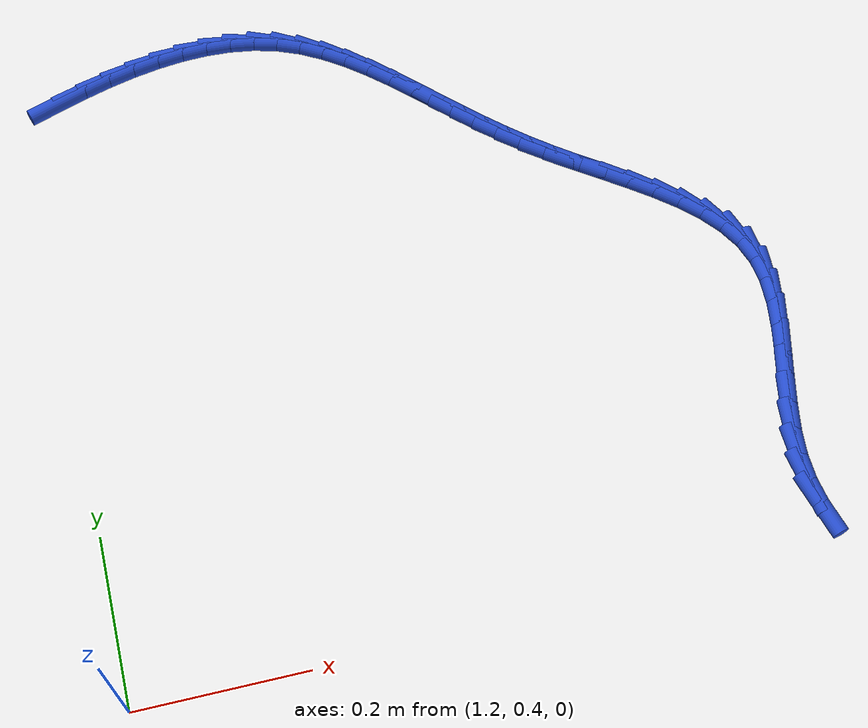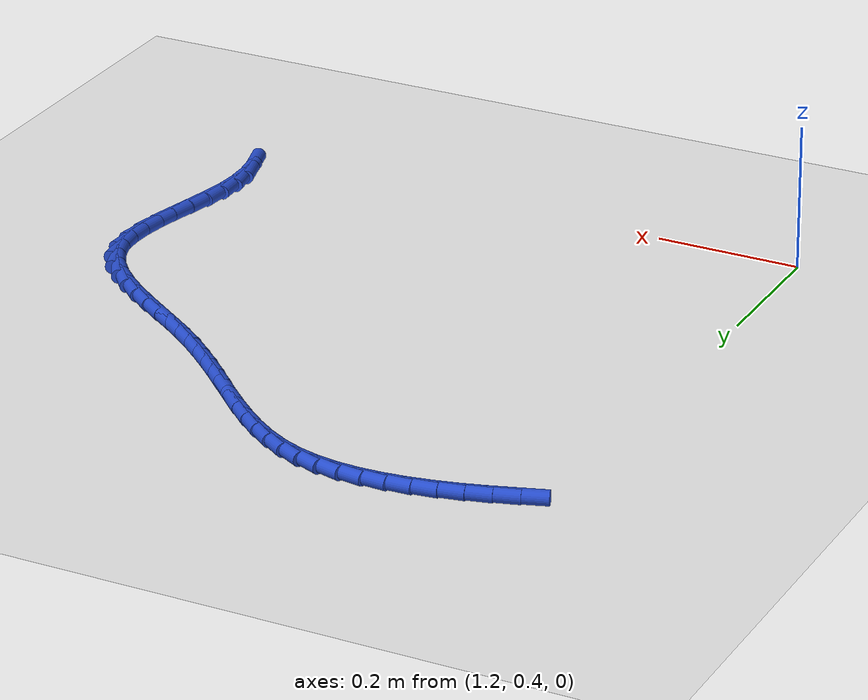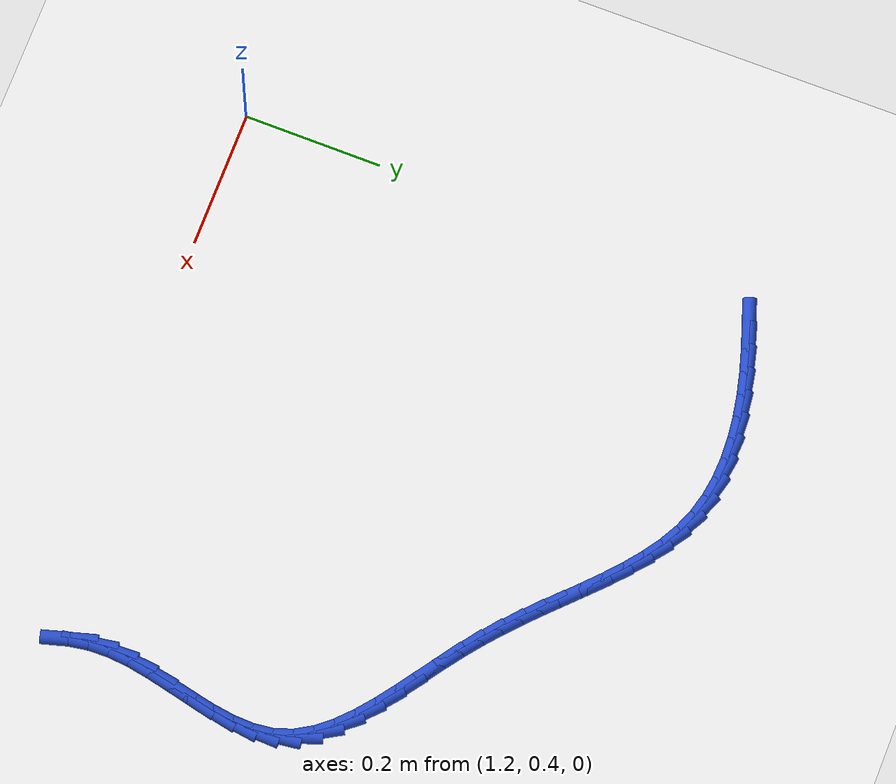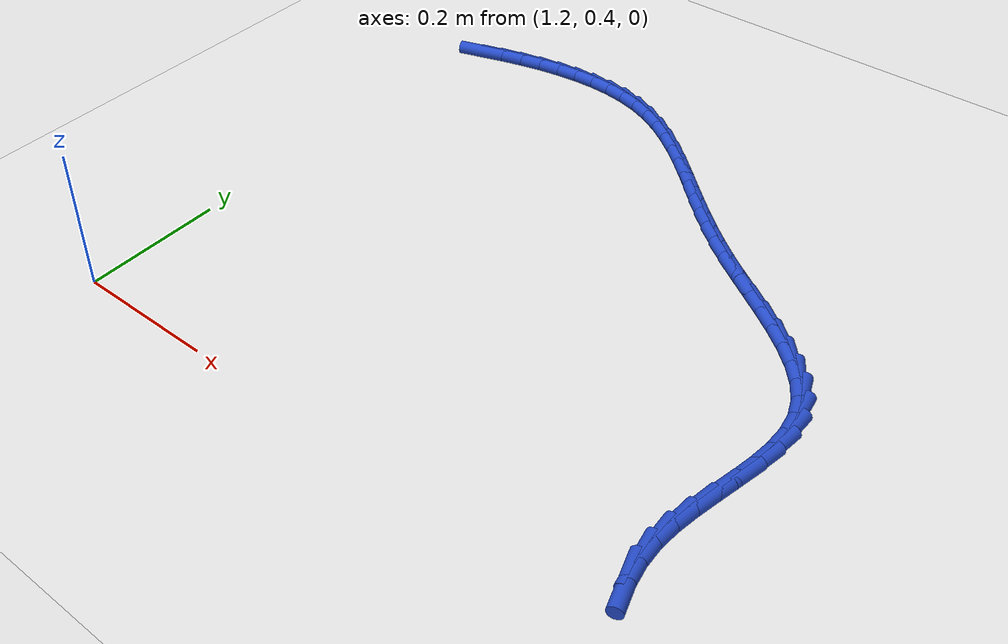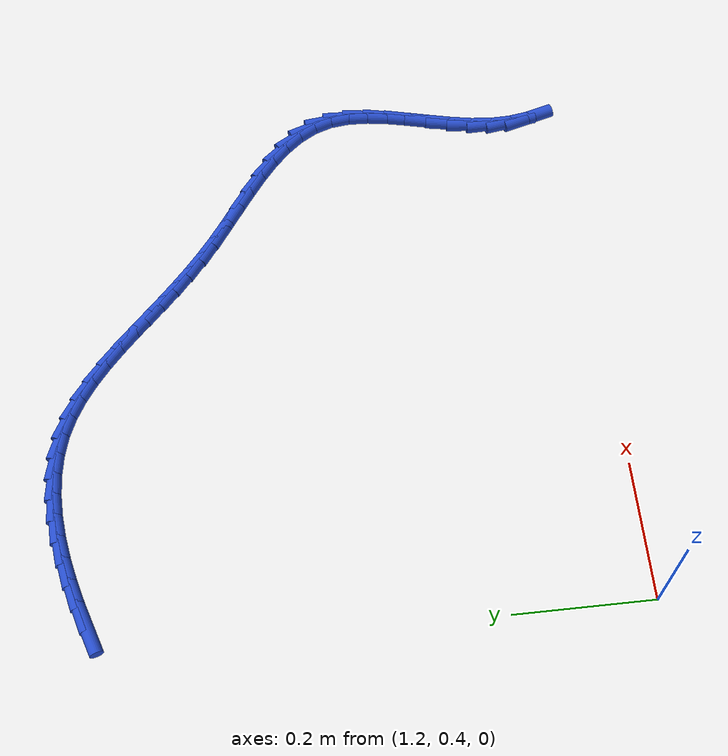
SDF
<sdf version="1.6">
 <world name="default">
  <model name="ground_plane">
   <static>1</static>
   <link name="link">
    <collision name="collision">
     <geometry><plane><normal>0 0 1</normal><size>100 100</size></plane></geometry>
     <surface><friction><ode><mu>100</mu><mu2>50</mu2></ode></friction></surface>
    </collision>
    <visual name="visual">
     <cast_shadows>0</cast_shadows>
     <geometry><plane><normal>0 0 1</normal><size>100 100</size></plane></geometry>
     <material>
      <script><uri>file://media/materials/scripts/gazebo.material</uri><name>Gazebo/WhiteGlow</name></script>
     </material>
    </visual>
   </link>
  </model>
  <model name="line">
   <link name="link_59">
    <pose>1.2396946974499399 1.1645942711903865 0.01 0 1.57 0.3216742407927594</pose>
    <collision name="collision">
     <geometry><cylinder><radius>0.01</radius><length>0.08</length></cylinder></geometry>
    </collision>
    <visual name="visual">
     <material>
      <script><name>Gazebo/Blue</name><uri>file://media/materials/scripts/gazebo.material</uri></script>
     </material>
     <geometry><cylinder><radius>0.01</radius><length>0.08</length></cylinder></geometry>
    </visual>
   </link>
   <link name="link_60">
    <pose>1.2717606933681214 1.1752802175970374 0.01 0 1.57 0.28263354644725275</pose>
    <collision name="collision">
     <geometry><cylinder><radius>0.01</radius><length>0.08</length></cylinder></geometry>
    </collision>
    <visual name="visual">
     <material>
      <script><name>Gazebo/Blue</name><uri>file://media/materials/scripts/gazebo.material</uri></script>
     </material>
     <geometry><cylinder><radius>0.01</radius><length>0.08</length></cylinder></geometry>
    </visual>
   </link>
   <link name="link_61">
    <pose>1.304036291493478 1.1846533030756763 0.01 0 1.57 0.23611502922891736</pose>
    <collision name="collision">
     <geometry><cylinder><radius>0.01</radius><length>0.08</length></cylinder></geometry>
    </collision>
    <visual name="visual">
     <material>
      <script><name>Gazebo/Blue</name><uri>file://media/materials/scripts/gazebo.material</uri></script>
     </material>
     <geometry><cylinder><radius>0.01</radius><length>0.08</length></cylinder></geometry>
    </visual>
   </link>
   <link name="link_62">
    <pose>1.3363530406697008 1.192428808774435 0.01 0 1.57 0.181073547739236</pose>
    <collision name="collision">
     <geometry><cylinder><radius>0.01</radius><length>0.08</length></cylinder></geometry>
    </collision>
    <visual name="visual">
     <material>
      <script><name>Gazebo/Blue</name><uri>file://media/materials/scripts/gazebo.material</uri></script>
     </material>
     <geometry><cylinder><radius>0.01</radius><length>0.08</length></cylinder></geometry>
    </visual>
   </link>
   <link name="link_63">
    <pose>1.3685424897404819 1.1983220158414454 0.01 0 1.57 0.11630427548157742</pose>
    <collision name="collision">
     <geometry><cylinder><radius>0.01</radius><length>0.08</length></cylinder></geometry>
    </collision>
    <visual name="visual">
     <material>
      <script><name>Gazebo/Blue</name><uri>file://media/materials/scripts/gazebo.material</uri></script>
     </material>
     <geometry><cylinder><radius>0.01</radius><length>0.08</length></cylinder></geometry>
    </visual>
   </link>
   <link name="link_64">
    <pose>1.400436187549511 1.2020482054248378 0.01 0 1.57 0.04052739013193571</pose>
    <collision name="collision">
     <geometry><cylinder><radius>0.01</radius><length>0.08</length></cylinder></geometry>
    </collision>
    <visual name="visual">
     <material>
      <script><name>Gazebo/Blue</name><uri>file://media/materials/scripts/gazebo.material</uri></script>
     </material>
     <geometry><cylinder><radius>0.01</radius><length>0.08</length></cylinder></geometry>
    </visual>
   </link>
   <link name="link_65">
    <pose>1.4318656829404792 1.2033226586727446 0.01 0 1.57 -0.04743684946748167</pose>
    <collision name="collision">
     <geometry><cylinder><radius>0.01</radius><length>0.08</length></cylinder></geometry>
    </collision>
    <visual name="visual">
     <material>
      <script><name>Gazebo/Blue</name><uri>file://media/materials/scripts/gazebo.material</uri></script>
     </material>
     <geometry><cylinder><radius>0.01</radius><length>0.08</length></cylinder></geometry>
    </visual>
   </link>
   <link name="link_66">
    <pose>1.4626625247570788 1.2018606567332966 0.01 0 1.57 -0.14836221609609038</pose>
    <collision name="collision">
     <geometry><cylinder><radius>0.01</radius><length>0.08</length></cylinder></geometry>
    </collision>
    <visual name="visual">
     <material>
      <script><name>Gazebo/Blue</name><uri>file://media/materials/scripts/gazebo.material</uri></script>
     </material>
     <geometry><cylinder><radius>0.01</radius><length>0.08</length></cylinder></geometry>
    </visual>
   </link>
   <link name="link_67">
    <pose>1.492658261843 1.1973774807546256 0.01 0 1.57 -0.26216987482418747</pose>
    <collision name="collision">
     <geometry><cylinder><radius>0.01</radius><length>0.08</length></cylinder></geometry>
    </collision>
    <visual name="visual">
     <material>
      <script><name>Gazebo/Blue</name><uri>file://media/materials/scripts/gazebo.material</uri></script>
     </material>
     <geometry><cylinder><radius>0.01</radius><length>0.08</length></cylinder></geometry>
    </visual>
   </link>
   <link name="link_68">
    <pose>1.5216844430419334 1.1895884118848623 0.01 0 1.57 -0.3866303557922626</pose>
    <collision name="collision">
     <geometry><cylinder><radius>0.01</radius><length>0.08</length></cylinder></geometry>
    </collision>
    <visual name="visual">
     <material>
      <script><name>Gazebo/Blue</name><uri>file://media/materials/scripts/gazebo.material</uri></script>
     </material>
     <geometry><cylinder><radius>0.01</radius><length>0.08</length></cylinder></geometry>
    </visual>
   </link>
   <link name="link_69">
    <pose>1.5495805301013221 1.1782313192981213 0.01 0 1.57 -0.5034444426608695</pose>
    <collision name="collision">
     <geometry><cylinder><radius>0.01</radius><length>0.08</length></cylinder></geometry>
    </collision>
    <visual name="visual">
     <material>
      <script><name>Gazebo/Blue</name><uri>file://media/materials/scripts/gazebo.material</uri></script>
     </material>
     <geometry><cylinder><radius>0.01</radius><length>0.08</length></cylinder></geometry>
    </visual>
   </link>
   <link name="link_70">
    <pose>1.5763426215449061 1.1634912045594055 0.01 0 1.57 -0.597327470512749</pose>
    <collision name="collision">
     <geometry><cylinder><radius>0.01</radius><length>0.08</length></cylinder></geometry>
    </collision>
    <visual name="visual">
     <material>
      <script><name>Gazebo/Blue</name><uri>file://media/materials/scripts/gazebo.material</uri></script>
     </material>
     <geometry><cylinder><radius>0.01</radius><length>0.08</length></cylinder></geometry>
    </visual>
   </link>
   <link name="link_71">
    <pose>1.6021105385882406 1.1459633373223133 0.01 0 1.57 -0.6690885610182845</pose>
    <collision name="collision">
     <geometry><cylinder><radius>0.01</radius><length>0.08</length></cylinder></geometry>
    </collision>
    <visual name="visual">
     <material>
      <script><name>Gazebo/Blue</name><uri>file://media/materials/scripts/gazebo.material</uri></script>
     </material>
     <geometry><cylinder><radius>0.01</radius><length>0.08</length></cylinder></geometry>
    </visual>
   </link>
   <link name="link_72">
    <pose>1.6270294265378813 1.126258185290314 0.01 0 1.57 -0.7207876072355663</pose>
    <collision name="collision">
     <geometry><cylinder><radius>0.01</radius><length>0.08</length></cylinder></geometry>
    </collision>
    <visual name="visual">
     <material>
      <script><name>Gazebo/Blue</name><uri>file://media/materials/scripts/gazebo.material</uri></script>
     </material>
     <geometry><cylinder><radius>0.01</radius><length>0.08</length></cylinder></geometry>
    </visual>
   </link>
   <link name="link_73">
    <pose>1.6512444307003824 1.104986216166877 0.01 0 1.57 -0.7542877919329495</pose>
    <collision name="collision">
     <geometry><cylinder><radius>0.01</radius><length>0.08</length></cylinder></geometry>
    </collision>
    <visual name="visual">
     <material>
      <script><name>Gazebo/Blue</name><uri>file://media/materials/scripts/gazebo.material</uri></script>
     </material>
     <geometry><cylinder><radius>0.01</radius><length>0.08</length></cylinder></geometry>
    </visual>
   </link>
   <link name="link_74">
    <pose>1.6749006963823 1.0827578976554728 0.01 0 1.57 -0.770809108189896</pose>
    <collision name="collision">
     <geometry><cylinder><radius>0.01</radius><length>0.08</length></cylinder></geometry>
    </collision>
    <visual name="visual">
     <material>
      <script><name>Gazebo/Blue</name><uri>file://media/materials/scripts/gazebo.material</uri></script>
     </material>
     <geometry><cylinder><radius>0.01</radius><length>0.08</length></cylinder></geometry>
    </visual>
   </link>
   <link name="link_75">
    <pose>1.6981433688901884 1.0601836974595713 0.01 0 1.57 -0.7707226683922299</pose>
    <collision name="collision">
     <geometry><cylinder><radius>0.01</radius><length>0.08</length></cylinder></geometry>
    </collision>
    <visual name="visual">
     <material>
      <script><name>Gazebo/Blue</name><uri>file://media/materials/scripts/gazebo.material</uri></script>
     </material>
     <geometry><cylinder><radius>0.01</radius><length>0.08</length></cylinder></geometry>
    </visual>
   </link>
   <link name="link_76">
    <pose>1.7211175935306027 1.0378740832826423 0.01 0 1.57 -0.754811968397314</pose>
    <collision name="collision">
     <geometry><cylinder><radius>0.01</radius><length>0.08</length></cylinder></geometry>
    </collision>
    <visual name="visual">
     <material>
      <script><name>Gazebo/Blue</name><uri>file://media/materials/scripts/gazebo.material</uri></script>
     </material>
     <geometry><cylinder><radius>0.01</radius><length>0.08</length></cylinder></geometry>
    </visual>
   </link>
   <link name="link_77">
    <pose>1.7440060417106256 1.0163446334083515 0.01 0 1.57 -0.7297961062997002</pose>
    <collision name="collision">
     <geometry><cylinder><radius>0.01</radius><length>0.08</length></cylinder></geometry>
    </collision>
    <visual name="visual">
     <material>
      <script><name>Gazebo/Blue</name><uri>file://media/materials/scripts/gazebo.material</uri></script>
     </material>
     <geometry><cylinder><radius>0.01</radius><length>0.08</length></cylinder></geometry>
    </visual>
   </link>
   <link name="link_78">
    <pose>1.767192012695819 0.9956036135880233 0.01 0 1.57 -0.6988795385347634</pose>
    <collision name="collision">
     <geometry><cylinder><radius>0.01</radius><length>0.08</length></cylinder></geometry>
    </collision>
    <visual name="visual">
     <material>
      <script><name>Gazebo/Blue</name><uri>file://media/materials/scripts/gazebo.material</uri></script>
     </material>
     <geometry><cylinder><radius>0.01</radius><length>0.08</length></cylinder></geometry>
    </visual>
   </link>
   <link name="link_79">
    <pose>1.7911255777072876 0.9754904483656187 0.01 0 1.57 -0.6635041681701959</pose>
    <collision name="collision">
     <geometry><cylinder><radius>0.01</radius><length>0.08</length></cylinder></geometry>
    </collision>
    <visual name="visual">
     <material>
      <script><name>Gazebo/Blue</name><uri>file://media/materials/scripts/gazebo.material</uri></script>
     </material>
     <geometry><cylinder><radius>0.01</radius><length>0.08</length></cylinder></geometry>
    </visual>
   </link>
   <link name="link_80">
    <pose>1.8162568532088912 0.9558444478831588 0.01 0 1.57 -0.6268028935473543</pose>
    <collision name="collision">
     <geometry><cylinder><radius>0.01</radius><length>0.08</length></cylinder></geometry>
    </collision>
    <visual name="visual">
     <material>
      <script><name>Gazebo/Blue</name><uri>file://media/materials/scripts/gazebo.material</uri></script>
     </material>
     <geometry><cylinder><radius>0.01</radius><length>0.08</length></cylinder></geometry>
    </visual>
   </link>
   <link name="link_81">
    <pose>1.8429688313902335 0.9364988483295156 0.01 0 1.57 -0.6052456718027063</pose>
    <collision name="collision">
     <geometry><cylinder><radius>0.01</radius><length>0.08</length></cylinder></geometry>
    </collision>
    <visual name="visual">
     <material>
      <script><name>Gazebo/Blue</name><uri>file://media/materials/scripts/gazebo.material</uri></script>
     </material>
     <geometry><cylinder><radius>0.01</radius><length>0.08</length></cylinder></geometry>
    </visual>
   </link>
   <link name="link_82">
    <pose>1.8708421229488743 0.9172142798558062 0.01 0 1.57 -0.6071303076810874</pose>
    <collision name="collision">
     <geometry><cylinder><radius>0.01</radius><length>0.08</length></cylinder></geometry>
    </collision>
    <visual name="visual">
     <material>
      <script><name>Gazebo/Blue</name><uri>file://media/materials/scripts/gazebo.material</uri></script>
     </material>
     <geometry><cylinder><radius>0.01</radius><length>0.08</length></cylinder></geometry>
    </visual>
   </link>
   <link name="link_83">
    <pose>1.898929001017878 0.8977035643105689 0.01 0 1.57 -0.6321070335067361</pose>
    <collision name="collision">
     <geometry><cylinder><radius>0.01</radius><length>0.08</length></cylinder></geometry>
    </collision>
    <visual name="visual">
     <material>
      <script><name>Gazebo/Blue</name><uri>file://media/materials/scripts/gazebo.material</uri></script>
     </material>
     <geometry><cylinder><radius>0.01</radius><length>0.08</length></cylinder></geometry>
    </visual>
   </link>
   <link name="link_84">
    <pose>1.9262724409755136 0.8776786822054681 0.01 0 1.57 -0.6821321111519187</pose>
    <collision name="collision">
     <geometry><cylinder><radius>0.01</radius><length>0.08</length></cylinder></geometry>
    </collision>
    <visual name="visual">
     <material>
      <script><name>Gazebo/Blue</name><uri>file://media/materials/scripts/gazebo.material</uri></script>
     </material>
     <geometry><cylinder><radius>0.01</radius><length>0.08</length></cylinder></geometry>
    </visual>
   </link>
   <link name="link_85">
    <pose>1.9519154182000498 0.8568516140521687 0.01 0 1.57 -0.7616131077045573</pose>
    <collision name="collision">
     <geometry><cylinder><radius>0.01</radius><length>0.08</length></cylinder></geometry>
    </collision>
    <visual name="visual">
     <material>
      <script><name>Gazebo/Blue</name><uri>file://media/materials/scripts/gazebo.material</uri></script>
     </material>
     <geometry><cylinder><radius>0.01</radius><length>0.08</length></cylinder></geometry>
    </visual>
   </link>
   <link name="link_86">
    <pose>1.9749009080697542 0.834934340362336 0.01 0 1.57 -0.8771214338222975</pose>
    <collision name="collision">
     <geometry><cylinder><radius>0.01</radius><length>0.08</length></cylinder></geometry>
    </collision>
    <visual name="visual">
     <material>
      <script><name>Gazebo/Blue</name><uri>file://media/materials/scripts/gazebo.material</uri></script>
     </material>
     <geometry><cylinder><radius>0.01</radius><length>0.08</length></cylinder></geometry>
    </visual>
   </link>
   <link name="link_87">
    <pose>1.9942718859628958 0.8116388416476346 0.01 0 1.57 -1.0356249241007198</pose>
    <collision name="collision">
     <geometry><cylinder><radius>0.01</radius><length>0.08</length></cylinder></geometry>
    </collision>
    <visual name="visual">
     <material>
      <script><name>Gazebo/Blue</name><uri>file://media/materials/scripts/gazebo.material</uri></script>
     </material>
     <geometry><cylinder><radius>0.01</radius><length>0.08</length></cylinder></geometry>
    </visual>
   </link>
   <link name="link_88">
    <pose>2.0090713272577436 0.786677098419729 0.01 0 1.57 -1.238749753912228</pose>
    <collision name="collision">
     <geometry><cylinder><radius>0.01</radius><length>0.08</length></cylinder></geometry>
    </collision>
    <visual name="visual">
     <material>
      <script><name>Gazebo/Blue</name><uri>file://media/materials/scripts/gazebo.material</uri></script>
     </material>
     <geometry><cylinder><radius>0.01</radius><length>0.08</length></cylinder></geometry>
    </visual>
   </link>
   <link name="link_89">
    <pose>2.018351284087968 0.7597640975515839 0.01 0 1.57 -1.4481008485037783</pose>
    <collision name="collision">
     <geometry><cylinder><radius>0.01</radius><length>0.08</length></cylinder></geometry>
    </collision>
    <visual name="visual">
     <material>
      <script><name>Gazebo/Blue</name><uri>file://media/materials/scripts/gazebo.material</uri></script>
     </material>
     <geometry><cylinder><radius>0.01</radius><length>0.08</length></cylinder></geometry>
    </visual>
   </link>
   <link name="link_90">
    <pose>2.0219151365704913 0.7308636773253334 0.01 0 1.57 1.5364827264730359</pose>
    <collision name="collision">
     <geometry><cylinder><radius>0.01</radius><length>0.08</length></cylinder></geometry>
    </collision>
    <visual name="visual">
     <material>
      <script><name>Gazebo/Blue</name><uri>file://media/materials/scripts/gazebo.material</uri></script>
     </material>
     <geometry><cylinder><radius>0.01</radius><length>0.08</length></cylinder></geometry>
    </visual>
   </link>
   <link name="link_91">
    <pose>2.020868411047859 0.7003709669245711 0.01 0 1.57 1.4319663552815216</pose>
    <collision name="collision">
     <geometry><cylinder><radius>0.01</radius><length>0.08</length></cylinder></geometry>
    </collision>
    <visual name="visual">
     <material>
      <script><name>Gazebo/Blue</name><uri>file://media/materials/scripts/gazebo.material</uri></script>
     </material>
     <geometry><cylinder><radius>0.01</radius><length>0.08</length></cylinder></geometry>
    </visual>
   </link>
   <link name="link_92">
    <pose>2.0164464294721185 0.6687240858394529 0.01 0 1.57 1.3707481114223827</pose>
    <collision name="collision">
     <geometry><cylinder><radius>0.01</radius><length>0.08</length></cylinder></geometry>
    </collision>
    <visual name="visual">
     <material>
      <script><name>Gazebo/Blue</name><uri>file://media/materials/scripts/gazebo.material</uri></script>
     </material>
     <geometry><cylinder><radius>0.01</radius><length>0.08</length></cylinder></geometry>
    </visual>
   </link>
   <link name="link_93">
    <pose>2.0098845137953196 0.6363611535601353 0.01 0 1.57 1.3459174921613422</pose>
    <collision name="collision">
     <geometry><cylinder><radius>0.01</radius><length>0.08</length></cylinder></geometry>
    </collision>
    <visual name="visual">
     <material>
      <script><name>Gazebo/Blue</name><uri>file://media/materials/scripts/gazebo.material</uri></script>
     </material>
     <geometry><cylinder><radius>0.01</radius><length>0.08</length></cylinder></geometry>
    </visual>
   </link>
   <link name="link_94">
    <pose>2.0024179859695113 0.6037202895767755 0.01 0 1.57 1.3545376687539183</pose>
    <collision name="collision">
     <geometry><cylinder><radius>0.01</radius><length>0.08</length></cylinder></geometry>
    </collision>
    <visual name="visual">
     <material>
      <script><name>Gazebo/Blue</name><uri>file://media/materials/scripts/gazebo.material</uri></script>
     </material>
     <geometry><cylinder><radius>0.01</radius><length>0.08</length></cylinder></geometry>
    </visual>
   </link>
   <link name="link_95">
    <pose>1.9952821679467423 0.5712396133795297 0.01 0 1.57 1.3978436959004812</pose>
    <collision name="collision">
     <geometry><cylinder><radius>0.01</radius><length>0.08</length></cylinder></geometry>
    </collision>
    <visual name="visual">
     <material>
      <script><name>Gazebo/Blue</name><uri>file://media/materials/scripts/gazebo.material</uri></script>
     </material>
     <geometry><cylinder><radius>0.01</radius><length>0.08</length></cylinder></geometry>
    </visual>
   </link>
   <link name="link_96">
    <pose>1.9897123816790623 0.5393572444585538 0.01 0 1.57 1.481279869765003</pose>
    <collision name="collision">
     <geometry><cylinder><radius>0.01</radius><length>0.08</length></cylinder></geometry>
    </collision>
    <visual name="visual">
     <material>
      <script><name>Gazebo/Blue</name><uri>file://media/materials/scripts/gazebo.material</uri></script>
     </material>
     <geometry><cylinder><radius>0.01</radius><length>0.08</length></cylinder></geometry>
    </visual>
   </link>
   <link name="link_97">
    <pose>1.9869437560059244 0.508511223168112 0.01 0 1.57 -1.5393299501364148</pose>
    <collision name="collision">
     <geometry><cylinder><radius>0.01</radius><length>0.08</length></cylinder></geometry>
    </collision>
    <visual name="visual">
     <material>
      <script><name>Gazebo/Blue</name><uri>file://media/materials/scripts/gazebo.material</uri></script>
     </material>
     <geometry><cylinder><radius>0.01</radius><length>0.08</length></cylinder></geometry>
    </visual>
   </link>
   <link name="link_98">
    <pose>1.987872649799948 0.47900076482161813 0.01 0 1.57 -1.4135460609010608</pose>
    <collision name="collision">
     <geometry><cylinder><radius>0.01</radius><length>0.08</length></cylinder></geometry>
    </collision>
    <visual name="visual">
     <material>
      <script><name>Gazebo/Blue</name><uri>file://media/materials/scripts/gazebo.material</uri></script>
     </material>
     <geometry><cylinder><radius>0.01</radius><length>0.08</length></cylinder></geometry>
    </visual>
   </link>
   <link name="link_99">
    <pose>1.992359885082411 0.4507007305695978 0.01 0 1.57 -1.2955309220246773</pose>
    <collision name="collision">
     <geometry><cylinder><radius>0.01</radius><length>0.08</length></cylinder></geometry>
    </collision>
    <visual name="visual">
     <material>
      <script><name>Gazebo/Blue</name><uri>file://media/materials/scripts/gazebo.material</uri></script>
     </material>
     <geometry><cylinder><radius>0.01</radius><length>0.08</length></cylinder></geometry>
    </visual>
   </link>
  </model>
 </world>
</sdf>
